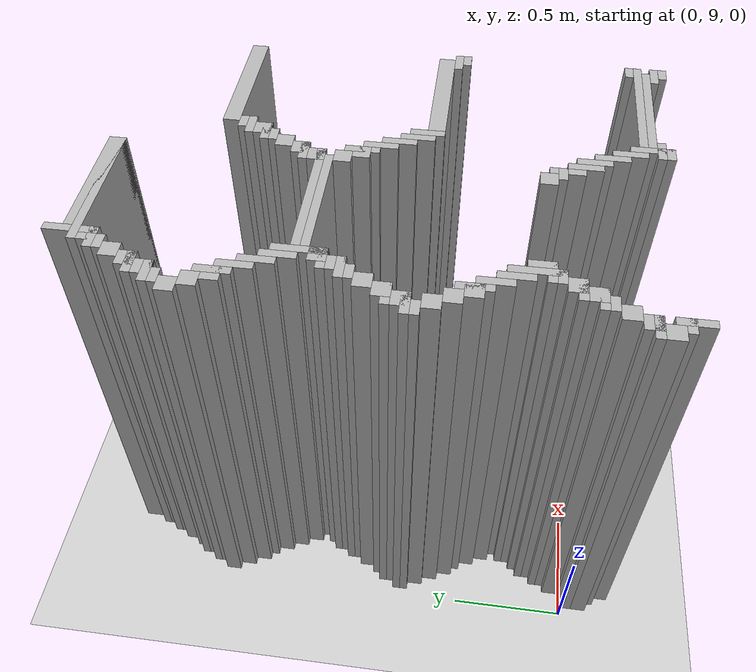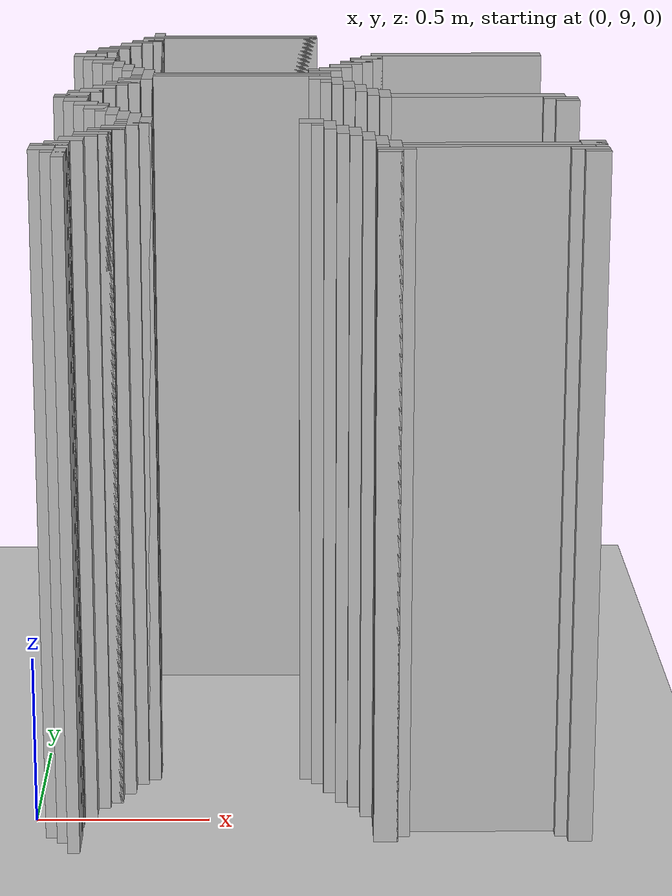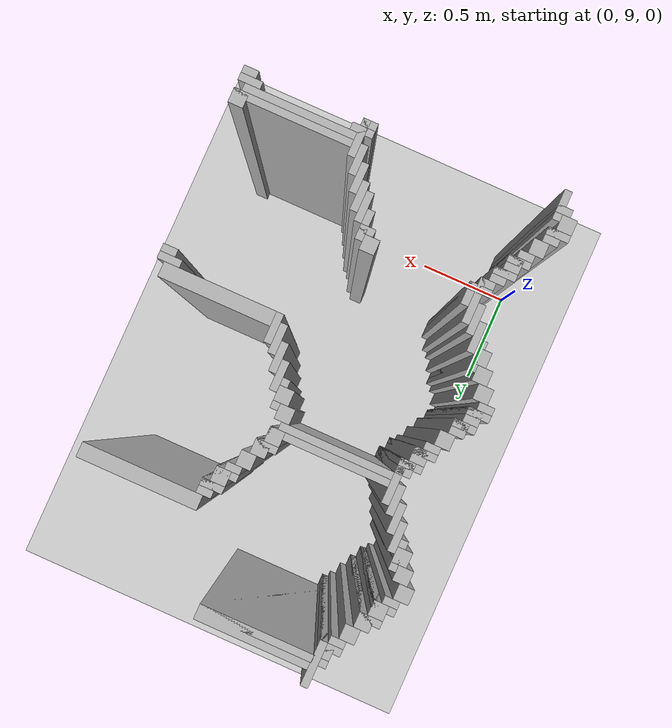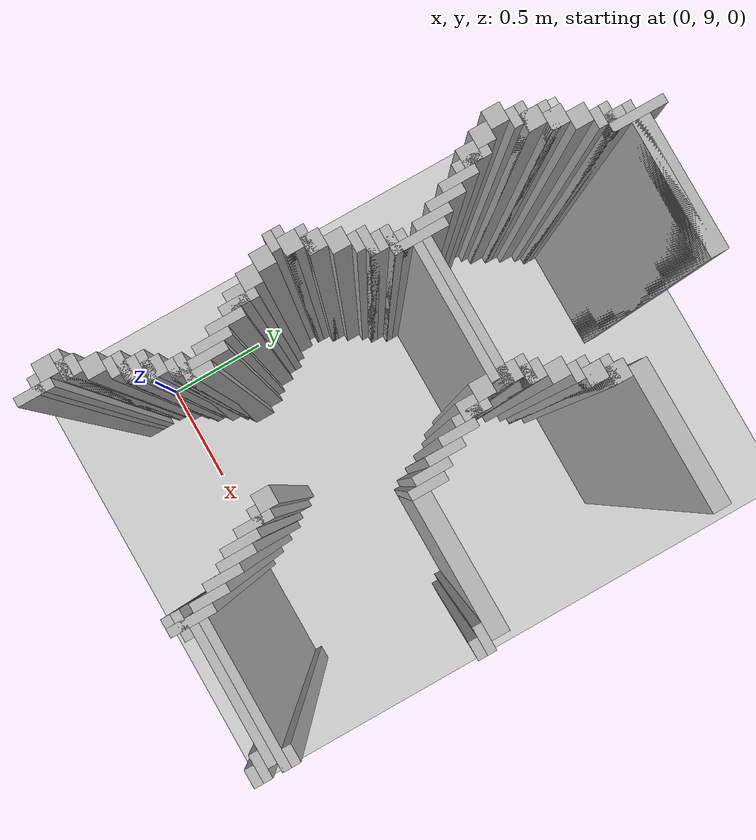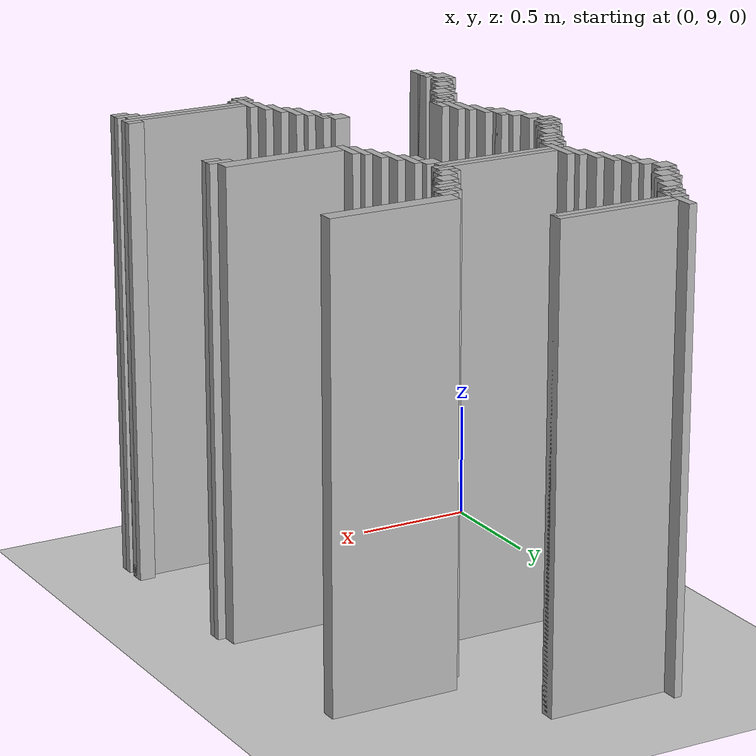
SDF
<sdf version="1.6">
 <world name="slam_world">
  <model name="ground_plane">
   <static>true</static>
   <link name="link">
    <collision name="collision">
     <geometry><plane><normal>0 0 1</normal><size>100 100</size></plane></geometry>
    </collision>
    <visual name="visual">
     <geometry><plane><normal>0 0 1</normal><size>100 100</size></plane></geometry>
     <material>
      <ambient>0.8 0.8 0.8 1</ambient>
      <diffuse>0.8 0.8 0.8 1</diffuse>
      <specular>0.8 0.8 0.8 1</specular>
     </material>
    </visual>
   </link>
  </model>
  <model name="wall_2064">
   <static>true</static>
   <pose>0.29582366589327147 11.032482598607888 1.0 0 0 0</pose>
   <link name="link">
    <collision name="collision">
     <geometry><box><size>0.03480278422273782 0.2088167053364269 2.0</size></box></geometry>
    </collision>
    <visual name="visual">
     <geometry><box><size>0.03480278422273782 0.2088167053364269 2.0</size></box></geometry>
     <material><ambient>0.5 0.5 0.5 1</ambient><diffuse>0.7 0.7 0.7 1</diffuse></material>
    </visual>
   </link>
  </model>
  <model name="wall_2090">
   <static>true</static>
   <pose>0.574245939675174 11.032482598607888 1.0 0 0 0</pose>
   <link name="link">
    <collision name="collision">
     <geometry><box><size>0.5220417633410672 0.06960556844547564 2.0</size></box></geometry>
    </collision>
    <visual name="visual">
     <geometry><box><size>0.5220417633410672 0.06960556844547564 2.0</size></box></geometry>
     <material><ambient>0.5 0.5 0.5 1</ambient><diffuse>0.7 0.7 0.7 1</diffuse></material>
    </visual>
   </link>
  </model>
  <model name="wall_2104">
   <static>true</static>
   <pose>0.5394431554524362 11.01508120649652 1.0 0 0 0</pose>
   <link name="link">
    <collision name="collision">
     <geometry><box><size>0.5916473317865429 0.03480278422273782 2.0</size></box></geometry>
    </collision>
    <visual name="visual">
     <geometry><box><size>0.5916473317865429 0.03480278422273782 2.0</size></box></geometry>
     <material><ambient>0.5 0.5 0.5 1</ambient><diffuse>0.7 0.7 0.7 1</diffuse></material>
    </visual>
   </link>
  </model>
  <model name="wall_2114">
   <static>true</static>
   <pose>0.27842227378190254 10.962877030162412 1.0 0 0 0</pose>
   <link name="link">
    <collision name="collision">
     <geometry><box><size>0.06960556844547564 0.06960556844547564 2.0</size></box></geometry>
    </collision>
    <visual name="visual">
     <geometry><box><size>0.06960556844547564 0.06960556844547564 2.0</size></box></geometry>
     <material><ambient>0.5 0.5 0.5 1</ambient><diffuse>0.7 0.7 0.7 1</diffuse></material>
    </visual>
   </link>
  </model>
  <model name="wall_2127">
   <static>true</static>
   <pose>0.2610208816705336 10.945475638051043 1.0 0 0 0</pose>
   <link name="link">
    <collision name="collision">
     <geometry><box><size>0.10440835266821345 0.03480278422273782 2.0</size></box></geometry>
    </collision>
    <visual name="visual">
     <geometry><box><size>0.10440835266821345 0.03480278422273782 2.0</size></box></geometry>
     <material><ambient>0.5 0.5 0.5 1</ambient><diffuse>0.7 0.7 0.7 1</diffuse></material>
    </visual>
   </link>
  </model>
  <model name="wall_2140">
   <static>true</static>
   <pose>0.24361948955916474 10.910672853828306 1.0 0 0 0</pose>
   <link name="link">
    <collision name="collision">
     <geometry><box><size>0.06960556844547564 0.03480278422273782 2.0</size></box></geometry>
    </collision>
    <visual name="visual">
     <geometry><box><size>0.06960556844547564 0.03480278422273782 2.0</size></box></geometry>
     <material><ambient>0.5 0.5 0.5 1</ambient><diffuse>0.7 0.7 0.7 1</diffuse></material>
    </visual>
   </link>
  </model>
  <model name="wall_2150">
   <static>true</static>
   <pose>0.2088167053364269 10.8584686774942 1.0 0 0 0</pose>
   <link name="link">
    <collision name="collision">
     <geometry><box><size>0.06960556844547564 0.06960556844547564 2.0</size></box></geometry>
    </collision>
    <visual name="visual">
     <geometry><box><size>0.06960556844547564 0.06960556844547564 2.0</size></box></geometry>
     <material><ambient>0.5 0.5 0.5 1</ambient><diffuse>0.7 0.7 0.7 1</diffuse></material>
    </visual>
   </link>
  </model>
  <model name="wall_2163">
   <static>true</static>
   <pose>0.17401392111368907 10.788863109048723 1.0 0 0 0</pose>
   <link name="link">
    <collision name="collision">
     <geometry><box><size>0.06960556844547564 0.06960556844547564 2.0</size></box></geometry>
    </collision>
    <visual name="visual">
     <geometry><box><size>0.06960556844547564 0.06960556844547564 2.0</size></box></geometry>
     <material><ambient>0.5 0.5 0.5 1</ambient><diffuse>0.7 0.7 0.7 1</diffuse></material>
    </visual>
   </link>
  </model>
  <model name="wall_2176">
   <static>true</static>
   <pose>0.15661252900232017 10.771461716937354 1.0 0 0 0</pose>
   <link name="link">
    <collision name="collision">
     <geometry><box><size>0.10440835266821345 0.03480278422273782 2.0</size></box></geometry>
    </collision>
    <visual name="visual">
     <geometry><box><size>0.10440835266821345 0.03480278422273782 2.0</size></box></geometry>
     <material><ambient>0.5 0.5 0.5 1</ambient><diffuse>0.7 0.7 0.7 1</diffuse></material>
    </visual>
   </link>
  </model>
  <model name="wall_2189">
   <static>true</static>
   <pose>0.13921113689095127 10.719257540603248 1.0 0 0 0</pose>
   <link name="link">
    <collision name="collision">
     <geometry><box><size>0.06960556844547564 0.06960556844547564 2.0</size></box></geometry>
    </collision>
    <visual name="visual">
     <geometry><box><size>0.06960556844547564 0.06960556844547564 2.0</size></box></geometry>
     <material><ambient>0.5 0.5 0.5 1</ambient><diffuse>0.7 0.7 0.7 1</diffuse></material>
    </visual>
   </link>
  </model>
  <model name="wall_2196">
   <static>true</static>
   <pose>0.12180974477958237 10.70185614849188 1.0 0 0 0</pose>
   <link name="link">
    <collision name="collision">
     <geometry><box><size>0.10440835266821345 0.03480278422273782 2.0</size></box></geometry>
    </collision>
    <visual name="visual">
     <geometry><box><size>0.10440835266821345 0.03480278422273782 2.0</size></box></geometry>
     <material><ambient>0.5 0.5 0.5 1</ambient><diffuse>0.7 0.7 0.7 1</diffuse></material>
    </visual>
   </link>
  </model>
  <model name="wall_2209">
   <static>true</static>
   <pose>0.10440835266821345 10.66705336426914 1.0 0 0 0</pose>
   <link name="link">
    <collision name="collision">
     <geometry><box><size>0.06960556844547564 0.03480278422273782 2.0</size></box></geometry>
    </collision>
    <visual name="visual">
     <geometry><box><size>0.06960556844547564 0.03480278422273782 2.0</size></box></geometry>
     <material><ambient>0.5 0.5 0.5 1</ambient><diffuse>0.7 0.7 0.7 1</diffuse></material>
    </visual>
   </link>
  </model>
  <model name="wall_2216">
   <static>true</static>
   <pose>0.06960556844547564 10.614849187935034 1.0 0 0 0</pose>
   <link name="link">
    <collision name="collision">
     <geometry><box><size>0.06960556844547564 0.06960556844547564 2.0</size></box></geometry>
    </collision>
    <visual name="visual">
     <geometry><box><size>0.06960556844547564 0.06960556844547564 2.0</size></box></geometry>
     <material><ambient>0.5 0.5 0.5 1</ambient><diffuse>0.7 0.7 0.7 1</diffuse></material>
    </visual>
   </link>
  </model>
  <model name="wall_2217">
   <static>true</static>
   <pose>1.2877030162412992 10.614849187935034 1.0 0 0 0</pose>
   <link name="link">
    <collision name="collision">
     <geometry><box><size>0.5568445475638051 0.06960556844547564 2.0</size></box></geometry>
    </collision>
    <visual name="visual">
     <geometry><box><size>0.5568445475638051 0.06960556844547564 2.0</size></box></geometry>
     <material><ambient>0.5 0.5 0.5 1</ambient><diffuse>0.7 0.7 0.7 1</diffuse></material>
    </visual>
   </link>
  </model>
  <model name="wall_2234">
   <static>true</static>
   <pose>0.10440835266821345 10.54524361948956 1.0 0 0 0</pose>
   <link name="link">
    <collision name="collision">
     <geometry><box><size>0.06960556844547564 0.06960556844547564 2.0</size></box></geometry>
    </collision>
    <visual name="visual">
     <geometry><box><size>0.06960556844547564 0.06960556844547564 2.0</size></box></geometry>
     <material><ambient>0.5 0.5 0.5 1</ambient><diffuse>0.7 0.7 0.7 1</diffuse></material>
    </visual>
   </link>
  </model>
  <model name="wall_2235">
   <static>true</static>
   <pose>1.0092807424593968 10.54524361948956 1.0 0 0 0</pose>
   <link name="link">
    <collision name="collision">
     <geometry><box><size>0.06960556844547564 0.06960556844547564 2.0</size></box></geometry>
    </collision>
    <visual name="visual">
     <geometry><box><size>0.06960556844547564 0.06960556844547564 2.0</size></box></geometry>
     <material><ambient>0.5 0.5 0.5 1</ambient><diffuse>0.7 0.7 0.7 1</diffuse></material>
    </visual>
   </link>
  </model>
  <model name="wall_2251">
   <static>true</static>
   <pose>0.15661252900232017 10.475638051044083 1.0 0 0 0</pose>
   <link name="link">
    <collision name="collision">
     <geometry><box><size>0.03480278422273782 0.13921113689095127 2.0</size></box></geometry>
    </collision>
    <visual name="visual">
     <geometry><box><size>0.03480278422273782 0.13921113689095127 2.0</size></box></geometry>
     <material><ambient>0.5 0.5 0.5 1</ambient><diffuse>0.7 0.7 0.7 1</diffuse></material>
    </visual>
   </link>
  </model>
  <model name="wall_2252">
   <static>true</static>
   <pose>0.9918793503480278 10.52784222737819 1.0 0 0 0</pose>
   <link name="link">
    <collision name="collision">
     <geometry><box><size>0.10440835266821345 0.03480278422273782 2.0</size></box></geometry>
    </collision>
    <visual name="visual">
     <geometry><box><size>0.10440835266821345 0.03480278422273782 2.0</size></box></geometry>
     <material><ambient>0.5 0.5 0.5 1</ambient><diffuse>0.7 0.7 0.7 1</diffuse></material>
    </visual>
   </link>
  </model>
  <model name="wall_2268">
   <static>true</static>
   <pose>0.13921113689095127 10.475638051044083 1.0 0 0 0</pose>
   <link name="link">
    <collision name="collision">
     <geometry><box><size>0.06960556844547564 0.06960556844547564 2.0</size></box></geometry>
    </collision>
    <visual name="visual">
     <geometry><box><size>0.06960556844547564 0.06960556844547564 2.0</size></box></geometry>
     <material><ambient>0.5 0.5 0.5 1</ambient><diffuse>0.7 0.7 0.7 1</diffuse></material>
    </visual>
   </link>
  </model>
  <model name="wall_2269">
   <static>true</static>
   <pose>0.974477958236659 10.475638051044083 1.0 0 0 0</pose>
   <link name="link">
    <collision name="collision">
     <geometry><box><size>0.06960556844547564 0.06960556844547564 2.0</size></box></geometry>
    </collision>
    <visual name="visual">
     <geometry><box><size>0.06960556844547564 0.06960556844547564 2.0</size></box></geometry>
     <material><ambient>0.5 0.5 0.5 1</ambient><diffuse>0.7 0.7 0.7 1</diffuse></material>
    </visual>
   </link>
  </model>
  <model name="wall_2285">
   <static>true</static>
   <pose>0.191415313225058 10.406032482598608 1.0 0 0 0</pose>
   <link name="link">
    <collision name="collision">
     <geometry><box><size>0.03480278422273782 0.13921113689095127 2.0</size></box></geometry>
    </collision>
    <visual name="visual">
     <geometry><box><size>0.03480278422273782 0.13921113689095127 2.0</size></box></geometry>
     <material><ambient>0.5 0.5 0.5 1</ambient><diffuse>0.7 0.7 0.7 1</diffuse></material>
    </visual>
   </link>
  </model>
  <model name="wall_2286">
   <static>true</static>
   <pose>0.95707656612529 10.458236658932714 1.0 0 0 0</pose>
   <link name="link">
    <collision name="collision">
     <geometry><box><size>0.10440835266821345 0.03480278422273782 2.0</size></box></geometry>
    </collision>
    <visual name="visual">
     <geometry><box><size>0.10440835266821345 0.03480278422273782 2.0</size></box></geometry>
     <material><ambient>0.5 0.5 0.5 1</ambient><diffuse>0.7 0.7 0.7 1</diffuse></material>
    </visual>
   </link>
  </model>
  <model name="wall_2302">
   <static>true</static>
   <pose>0.9396751740139211 10.423433874709977 1.0 0 0 0</pose>
   <link name="link">
    <collision name="collision">
     <geometry><box><size>0.06960556844547564 0.03480278422273782 2.0</size></box></geometry>
    </collision>
    <visual name="visual">
     <geometry><box><size>0.06960556844547564 0.03480278422273782 2.0</size></box></geometry>
     <material><ambient>0.5 0.5 0.5 1</ambient><diffuse>0.7 0.7 0.7 1</diffuse></material>
    </visual>
   </link>
  </model>
  <model name="wall_2310">
   <static>true</static>
   <pose>0.2262180974477958 10.336426914153131 1.0 0 0 0</pose>
   <link name="link">
    <collision name="collision">
     <geometry><box><size>0.03480278422273782 0.13921113689095127 2.0</size></box></geometry>
    </collision>
    <visual name="visual">
     <geometry><box><size>0.03480278422273782 0.13921113689095127 2.0</size></box></geometry>
     <material><ambient>0.5 0.5 0.5 1</ambient><diffuse>0.7 0.7 0.7 1</diffuse></material>
    </visual>
   </link>
  </model>
  <model name="wall_2311">
   <static>true</static>
   <pose>0.9048723897911832 10.37122969837587 1.0 0 0 0</pose>
   <link name="link">
    <collision name="collision">
     <geometry><box><size>0.06960556844547564 0.06960556844547564 2.0</size></box></geometry>
    </collision>
    <visual name="visual">
     <geometry><box><size>0.06960556844547564 0.06960556844547564 2.0</size></box></geometry>
     <material><ambient>0.5 0.5 0.5 1</ambient><diffuse>0.7 0.7 0.7 1</diffuse></material>
    </visual>
   </link>
  </model>
  <model name="wall_2327">
   <static>true</static>
   <pose>0.2610208816705336 10.266821345707656 1.0 0 0 0</pose>
   <link name="link">
    <collision name="collision">
     <geometry><box><size>0.03480278422273782 0.13921113689095127 2.0</size></box></geometry>
    </collision>
    <visual name="visual">
     <geometry><box><size>0.03480278422273782 0.13921113689095127 2.0</size></box></geometry>
     <material><ambient>0.5 0.5 0.5 1</ambient><diffuse>0.7 0.7 0.7 1</diffuse></material>
    </visual>
   </link>
  </model>
  <model name="wall_2328">
   <static>true</static>
   <pose>0.8700696055684455 10.301624129930394 1.0 0 0 0</pose>
   <link name="link">
    <collision name="collision">
     <geometry><box><size>0.06960556844547564 0.06960556844547564 2.0</size></box></geometry>
    </collision>
    <visual name="visual">
     <geometry><box><size>0.06960556844547564 0.06960556844547564 2.0</size></box></geometry>
     <material><ambient>0.5 0.5 0.5 1</ambient><diffuse>0.7 0.7 0.7 1</diffuse></material>
    </visual>
   </link>
  </model>
  <model name="wall_2344">
   <static>true</static>
   <pose>0.29582366589327147 10.19721577726218 1.0 0 0 0</pose>
   <link name="link">
    <collision name="collision">
     <geometry><box><size>0.03480278422273782 0.2088167053364269 2.0</size></box></geometry>
    </collision>
    <visual name="visual">
     <geometry><box><size>0.03480278422273782 0.2088167053364269 2.0</size></box></geometry>
     <material><ambient>0.5 0.5 0.5 1</ambient><diffuse>0.7 0.7 0.7 1</diffuse></material>
    </visual>
   </link>
  </model>
  <model name="wall_2345">
   <static>true</static>
   <pose>0.8526682134570766 10.284222737819025 1.0 0 0 0</pose>
   <link name="link">
    <collision name="collision">
     <geometry><box><size>0.10440835266821345 0.03480278422273782 2.0</size></box></geometry>
    </collision>
    <visual name="visual">
     <geometry><box><size>0.10440835266821345 0.03480278422273782 2.0</size></box></geometry>
     <material><ambient>0.5 0.5 0.5 1</ambient><diffuse>0.7 0.7 0.7 1</diffuse></material>
    </visual>
   </link>
  </model>
  <model name="wall_2361">
   <static>true</static>
   <pose>0.8352668213457076 10.232018561484919 1.0 0 0 0</pose>
   <link name="link">
    <collision name="collision">
     <geometry><box><size>0.06960556844547564 0.06960556844547564 2.0</size></box></geometry>
    </collision>
    <visual name="visual">
     <geometry><box><size>0.06960556844547564 0.06960556844547564 2.0</size></box></geometry>
     <material><ambient>0.5 0.5 0.5 1</ambient><diffuse>0.7 0.7 0.7 1</diffuse></material>
    </visual>
   </link>
  </model>
  <model name="wall_2369">
   <static>true</static>
   <pose>0.5916473317865429 10.214617169373549 1.0 0 0 0</pose>
   <link name="link">
    <collision name="collision">
     <geometry><box><size>0.5568445475638051 0.03480278422273782 2.0</size></box></geometry>
    </collision>
    <visual name="visual">
     <geometry><box><size>0.5568445475638051 0.03480278422273782 2.0</size></box></geometry>
     <material><ambient>0.5 0.5 0.5 1</ambient><diffuse>0.7 0.7 0.7 1</diffuse></material>
    </visual>
   </link>
  </model>
  <model name="wall_2382">
   <static>true</static>
   <pose>0.574245939675174 10.179814385150811 1.0 0 0 0</pose>
   <link name="link">
    <collision name="collision">
     <geometry><box><size>0.5220417633410672 0.03480278422273782 2.0</size></box></geometry>
    </collision>
    <visual name="visual">
     <geometry><box><size>0.5220417633410672 0.03480278422273782 2.0</size></box></geometry>
     <material><ambient>0.5 0.5 0.5 1</ambient><diffuse>0.7 0.7 0.7 1</diffuse></material>
    </visual>
   </link>
  </model>
  <model name="wall_2390">
   <static>true</static>
   <pose>0.27842227378190254 10.127610208816705 1.0 0 0 0</pose>
   <link name="link">
    <collision name="collision">
     <geometry><box><size>0.06960556844547564 0.06960556844547564 2.0</size></box></geometry>
    </collision>
    <visual name="visual">
     <geometry><box><size>0.06960556844547564 0.06960556844547564 2.0</size></box></geometry>
     <material><ambient>0.5 0.5 0.5 1</ambient><diffuse>0.7 0.7 0.7 1</diffuse></material>
    </visual>
   </link>
  </model>
  <model name="wall_2391">
   <static>true</static>
   <pose>0.8352668213457076 10.127610208816705 1.0 0 0 0</pose>
   <link name="link">
    <collision name="collision">
     <geometry><box><size>0.06960556844547564 0.06960556844547564 2.0</size></box></geometry>
    </collision>
    <visual name="visual">
     <geometry><box><size>0.06960556844547564 0.06960556844547564 2.0</size></box></geometry>
     <material><ambient>0.5 0.5 0.5 1</ambient><diffuse>0.7 0.7 0.7 1</diffuse></material>
    </visual>
   </link>
  </model>
  <model name="wall_2406">
   <static>true</static>
   <pose>0.2610208816705336 10.110208816705336 1.0 0 0 0</pose>
   <link name="link">
    <collision name="collision">
     <geometry><box><size>0.10440835266821345 0.03480278422273782 2.0</size></box></geometry>
    </collision>
    <visual name="visual">
     <geometry><box><size>0.10440835266821345 0.03480278422273782 2.0</size></box></geometry>
     <material><ambient>0.5 0.5 0.5 1</ambient><diffuse>0.7 0.7 0.7 1</diffuse></material>
    </visual>
   </link>
  </model>
  <model name="wall_2407">
   <static>true</static>
   <pose>0.8874709976798143 10.058004640371228 1.0 0 0 0</pose>
   <link name="link">
    <collision name="collision">
     <geometry><box><size>0.03480278422273782 0.13921113689095127 2.0</size></box></geometry>
    </collision>
    <visual name="visual">
     <geometry><box><size>0.03480278422273782 0.13921113689095127 2.0</size></box></geometry>
     <material><ambient>0.5 0.5 0.5 1</ambient><diffuse>0.7 0.7 0.7 1</diffuse></material>
    </visual>
   </link>
  </model>
  <model name="wall_2422">
   <static>true</static>
   <pose>0.24361948955916474 10.058004640371228 1.0 0 0 0</pose>
   <link name="link">
    <collision name="collision">
     <geometry><box><size>0.06960556844547564 0.06960556844547564 2.0</size></box></geometry>
    </collision>
    <visual name="visual">
     <geometry><box><size>0.06960556844547564 0.06960556844547564 2.0</size></box></geometry>
     <material><ambient>0.5 0.5 0.5 1</ambient><diffuse>0.7 0.7 0.7 1</diffuse></material>
    </visual>
   </link>
  </model>
  <model name="wall_2423">
   <static>true</static>
   <pose>0.8700696055684455 10.058004640371228 1.0 0 0 0</pose>
   <link name="link">
    <collision name="collision">
     <geometry><box><size>0.06960556844547564 0.06960556844547564 2.0</size></box></geometry>
    </collision>
    <visual name="visual">
     <geometry><box><size>0.06960556844547564 0.06960556844547564 2.0</size></box></geometry>
     <material><ambient>0.5 0.5 0.5 1</ambient><diffuse>0.7 0.7 0.7 1</diffuse></material>
    </visual>
   </link>
  </model>
  <model name="wall_2438">
   <static>true</static>
   <pose>0.2262180974477958 10.04060324825986 1.0 0 0 0</pose>
   <link name="link">
    <collision name="collision">
     <geometry><box><size>0.10440835266821345 0.03480278422273782 2.0</size></box></geometry>
    </collision>
    <visual name="visual">
     <geometry><box><size>0.10440835266821345 0.03480278422273782 2.0</size></box></geometry>
     <material><ambient>0.5 0.5 0.5 1</ambient><diffuse>0.7 0.7 0.7 1</diffuse></material>
    </visual>
   </link>
  </model>
  <model name="wall_2439">
   <static>true</static>
   <pose>0.9222737819025522 9.988399071925754 1.0 0 0 0</pose>
   <link name="link">
    <collision name="collision">
     <geometry><box><size>0.03480278422273782 0.13921113689095127 2.0</size></box></geometry>
    </collision>
    <visual name="visual">
     <geometry><box><size>0.03480278422273782 0.13921113689095127 2.0</size></box></geometry>
     <material><ambient>0.5 0.5 0.5 1</ambient><diffuse>0.7 0.7 0.7 1</diffuse></material>
    </visual>
   </link>
  </model>
  <model name="wall_2454">
   <static>true</static>
   <pose>0.2088167053364269 10.005800464037122 1.0 0 0 0</pose>
   <link name="link">
    <collision name="collision">
     <geometry><box><size>0.06960556844547564 0.03480278422273782 2.0</size></box></geometry>
    </collision>
    <visual name="visual">
     <geometry><box><size>0.06960556844547564 0.03480278422273782 2.0</size></box></geometry>
     <material><ambient>0.5 0.5 0.5 1</ambient><diffuse>0.7 0.7 0.7 1</diffuse></material>
    </visual>
   </link>
  </model>
  <model name="wall_2463">
   <static>true</static>
   <pose>0.17401392111368907 9.953596287703016 1.0 0 0 0</pose>
   <link name="link">
    <collision name="collision">
     <geometry><box><size>0.06960556844547564 0.06960556844547564 2.0</size></box></geometry>
    </collision>
    <visual name="visual">
     <geometry><box><size>0.06960556844547564 0.06960556844547564 2.0</size></box></geometry>
     <material><ambient>0.5 0.5 0.5 1</ambient><diffuse>0.7 0.7 0.7 1</diffuse></material>
    </visual>
   </link>
  </model>
  <model name="wall_2464">
   <static>true</static>
   <pose>0.95707656612529 9.918793503480279 1.0 0 0 0</pose>
   <link name="link">
    <collision name="collision">
     <geometry><box><size>0.03480278422273782 0.13921113689095127 2.0</size></box></geometry>
    </collision>
    <visual name="visual">
     <geometry><box><size>0.03480278422273782 0.13921113689095127 2.0</size></box></geometry>
     <material><ambient>0.5 0.5 0.5 1</ambient><diffuse>0.7 0.7 0.7 1</diffuse></material>
    </visual>
   </link>
  </model>
  <model name="wall_2479">
   <static>true</static>
   <pose>0.13921113689095127 9.88399071925754 1.0 0 0 0</pose>
   <link name="link">
    <collision name="collision">
     <geometry><box><size>0.06960556844547564 0.06960556844547564 2.0</size></box></geometry>
    </collision>
    <visual name="visual">
     <geometry><box><size>0.06960556844547564 0.06960556844547564 2.0</size></box></geometry>
     <material><ambient>0.5 0.5 0.5 1</ambient><diffuse>0.7 0.7 0.7 1</diffuse></material>
    </visual>
   </link>
  </model>
  <model name="wall_2480">
   <static>true</static>
   <pose>0.9918793503480278 9.849187935034802 1.0 0 0 0</pose>
   <link name="link">
    <collision name="collision">
     <geometry><box><size>0.03480278422273782 0.13921113689095127 2.0</size></box></geometry>
    </collision>
    <visual name="visual">
     <geometry><box><size>0.03480278422273782 0.13921113689095127 2.0</size></box></geometry>
     <material><ambient>0.5 0.5 0.5 1</ambient><diffuse>0.7 0.7 0.7 1</diffuse></material>
    </visual>
   </link>
  </model>
  <model name="wall_2495">
   <static>true</static>
   <pose>0.12180974477958237 9.86658932714617 1.0 0 0 0</pose>
   <link name="link">
    <collision name="collision">
     <geometry><box><size>0.10440835266821345 0.03480278422273782 2.0</size></box></geometry>
    </collision>
    <visual name="visual">
     <geometry><box><size>0.10440835266821345 0.03480278422273782 2.0</size></box></geometry>
     <material><ambient>0.5 0.5 0.5 1</ambient><diffuse>0.7 0.7 0.7 1</diffuse></material>
    </visual>
   </link>
  </model>
  <model name="wall_2496">
   <static>true</static>
   <pose>1.0266821345707655 9.814385150812065 1.0 0 0 0</pose>
   <link name="link">
    <collision name="collision">
     <geometry><box><size>0.03480278422273782 0.13921113689095127 2.0</size></box></geometry>
    </collision>
    <visual name="visual">
     <geometry><box><size>0.03480278422273782 0.13921113689095127 2.0</size></box></geometry>
     <material><ambient>0.5 0.5 0.5 1</ambient><diffuse>0.7 0.7 0.7 1</diffuse></material>
    </visual>
   </link>
  </model>
  <model name="wall_2511">
   <static>true</static>
   <pose>0.10440835266821345 9.814385150812065 1.0 0 0 0</pose>
   <link name="link">
    <collision name="collision">
     <geometry><box><size>0.06960556844547564 0.06960556844547564 2.0</size></box></geometry>
    </collision>
    <visual name="visual">
     <geometry><box><size>0.06960556844547564 0.06960556844547564 2.0</size></box></geometry>
     <material><ambient>0.5 0.5 0.5 1</ambient><diffuse>0.7 0.7 0.7 1</diffuse></material>
    </visual>
   </link>
  </model>
  <model name="wall_2520">
   <static>true</static>
   <pose>0.08700696055684454 9.796983758700696 1.0 0 0 0</pose>
   <link name="link">
    <collision name="collision">
     <geometry><box><size>0.10440835266821345 0.03480278422273782 2.0</size></box></geometry>
    </collision>
    <visual name="visual">
     <geometry><box><size>0.10440835266821345 0.03480278422273782 2.0</size></box></geometry>
     <material><ambient>0.5 0.5 0.5 1</ambient><diffuse>0.7 0.7 0.7 1</diffuse></material>
    </visual>
   </link>
  </model>
  <model name="wall_2521">
   <static>true</static>
   <pose>1.3051044083526682 9.779582366589327 1.0 0 0 0</pose>
   <link name="link">
    <collision name="collision">
     <geometry><box><size>0.5220417633410672 0.06960556844547564 2.0</size></box></geometry>
    </collision>
    <visual name="visual">
     <geometry><box><size>0.5220417633410672 0.06960556844547564 2.0</size></box></geometry>
     <material><ambient>0.5 0.5 0.5 1</ambient><diffuse>0.7 0.7 0.7 1</diffuse></material>
    </visual>
   </link>
  </model>
  <model name="wall_2534">
   <static>true</static>
   <pose>0.06960556844547564 9.762180974477959 1.0 0 0 0</pose>
   <link name="link">
    <collision name="collision">
     <geometry><box><size>0.06960556844547564 0.03480278422273782 2.0</size></box></geometry>
    </collision>
    <visual name="visual">
     <geometry><box><size>0.06960556844547564 0.03480278422273782 2.0</size></box></geometry>
     <material><ambient>0.5 0.5 0.5 1</ambient><diffuse>0.7 0.7 0.7 1</diffuse></material>
    </visual>
   </link>
  </model>
  <model name="wall_2543">
   <static>true</static>
   <pose>0.10440835266821345 9.70997679814385 1.0 0 0 0</pose>
   <link name="link">
    <collision name="collision">
     <geometry><box><size>0.06960556844547564 0.06960556844547564 2.0</size></box></geometry>
    </collision>
    <visual name="visual">
     <geometry><box><size>0.06960556844547564 0.06960556844547564 2.0</size></box></geometry>
     <material><ambient>0.5 0.5 0.5 1</ambient><diffuse>0.7 0.7 0.7 1</diffuse></material>
    </visual>
   </link>
  </model>
  <model name="wall_2544">
   <static>true</static>
   <pose>1.548723897911833 9.72737819025522 1.0 0 0 0</pose>
   <link name="link">
    <collision name="collision">
     <geometry><box><size>0.10440835266821345 0.03480278422273782 2.0</size></box></geometry>
    </collision>
    <visual name="visual">
     <geometry><box><size>0.10440835266821345 0.03480278422273782 2.0</size></box></geometry>
     <material><ambient>0.5 0.5 0.5 1</ambient><diffuse>0.7 0.7 0.7 1</diffuse></material>
    </visual>
   </link>
  </model>
  <model name="wall_2554">
   <static>true</static>
   <pose>1.5661252900232019 9.692575406032482 1.0 0 0 0</pose>
   <link name="link">
    <collision name="collision">
     <geometry><box><size>0.06960556844547564 0.03480278422273782 2.0</size></box></geometry>
    </collision>
    <visual name="visual">
     <geometry><box><size>0.06960556844547564 0.03480278422273782 2.0</size></box></geometry>
     <material><ambient>0.5 0.5 0.5 1</ambient><diffuse>0.7 0.7 0.7 1</diffuse></material>
    </visual>
   </link>
  </model>
  <model name="wall_2560">
   <static>true</static>
   <pose>0.13921113689095127 9.640371229698376 1.0 0 0 0</pose>
   <link name="link">
    <collision name="collision">
     <geometry><box><size>0.06960556844547564 0.06960556844547564 2.0</size></box></geometry>
    </collision>
    <visual name="visual">
     <geometry><box><size>0.06960556844547564 0.06960556844547564 2.0</size></box></geometry>
     <material><ambient>0.5 0.5 0.5 1</ambient><diffuse>0.7 0.7 0.7 1</diffuse></material>
    </visual>
   </link>
  </model>
  <model name="wall_2571">
   <static>true</static>
   <pose>0.191415313225058 9.5707656612529 1.0 0 0 0</pose>
   <link name="link">
    <collision name="collision">
     <geometry><box><size>0.03480278422273782 0.13921113689095127 2.0</size></box></geometry>
    </collision>
    <visual name="visual">
     <geometry><box><size>0.03480278422273782 0.13921113689095127 2.0</size></box></geometry>
     <material><ambient>0.5 0.5 0.5 1</ambient><diffuse>0.7 0.7 0.7 1</diffuse></material>
    </visual>
   </link>
  </model>
  <model name="wall_2582">
   <static>true</static>
   <pose>0.17401392111368907 9.5707656612529 1.0 0 0 0</pose>
   <link name="link">
    <collision name="collision">
     <geometry><box><size>0.06960556844547564 0.06960556844547564 2.0</size></box></geometry>
    </collision>
    <visual name="visual">
     <geometry><box><size>0.06960556844547564 0.06960556844547564 2.0</size></box></geometry>
     <material><ambient>0.5 0.5 0.5 1</ambient><diffuse>0.7 0.7 0.7 1</diffuse></material>
    </visual>
   </link>
  </model>
  <model name="wall_2593">
   <static>true</static>
   <pose>0.2262180974477958 9.501160092807424 1.0 0 0 0</pose>
   <link name="link">
    <collision name="collision">
     <geometry><box><size>0.03480278422273782 0.13921113689095127 2.0</size></box></geometry>
    </collision>
    <visual name="visual">
     <geometry><box><size>0.03480278422273782 0.13921113689095127 2.0</size></box></geometry>
     <material><ambient>0.5 0.5 0.5 1</ambient><diffuse>0.7 0.7 0.7 1</diffuse></material>
    </visual>
   </link>
  </model>
  <model name="wall_2607">
   <static>true</static>
   <pose>0.2610208816705336 9.431554524361948 1.0 0 0 0</pose>
   <link name="link">
    <collision name="collision">
     <geometry><box><size>0.03480278422273782 0.13921113689095127 2.0</size></box></geometry>
    </collision>
    <visual name="visual">
     <geometry><box><size>0.03480278422273782 0.13921113689095127 2.0</size></box></geometry>
     <material><ambient>0.5 0.5 0.5 1</ambient><diffuse>0.7 0.7 0.7 1</diffuse></material>
    </visual>
   </link>
  </model>
  <model name="wall_2618">
   <static>true</static>
   <pose>0.29582366589327147 9.361948955916473 1.0 0 0 0</pose>
   <link name="link">
    <collision name="collision">
     <geometry><box><size>0.03480278422273782 0.2088167053364269 2.0</size></box></geometry>
    </collision>
    <visual name="visual">
     <geometry><box><size>0.03480278422273782 0.2088167053364269 2.0</size></box></geometry>
     <material><ambient>0.5 0.5 0.5 1</ambient><diffuse>0.7 0.7 0.7 1</diffuse></material>
    </visual>
   </link>
  </model>
  <model name="wall_2632">
   <static>true</static>
   <pose>0.3306264501160093 9.344547563805104 1.0 0 0 0</pose>
   <link name="link">
    <collision name="collision">
     <geometry><box><size>0.03480278422273782 0.10440835266821345 2.0</size></box></geometry>
    </collision>
    <visual name="visual">
     <geometry><box><size>0.03480278422273782 0.10440835266821345 2.0</size></box></geometry>
     <material><ambient>0.5 0.5 0.5 1</ambient><diffuse>0.7 0.7 0.7 1</diffuse></material>
    </visual>
   </link>
  </model>
  <model name="wall_2645">
   <static>true</static>
   <pose>0.8004640371229698 9.327146171693736 1.0 0 0 0</pose>
   <link name="link">
    <collision name="collision">
     <geometry><box><size>0.06960556844547564 0.06960556844547564 2.0</size></box></geometry>
    </collision>
    <visual name="visual">
     <geometry><box><size>0.06960556844547564 0.06960556844547564 2.0</size></box></geometry>
     <material><ambient>0.5 0.5 0.5 1</ambient><diffuse>0.7 0.7 0.7 1</diffuse></material>
    </visual>
   </link>
  </model>
  <model name="wall_2655">
   <static>true</static>
   <pose>0.29582366589327147 9.309744779582367 1.0 0 0 0</pose>
   <link name="link">
    <collision name="collision">
     <geometry><box><size>0.10440835266821345 0.03480278422273782 2.0</size></box></geometry>
    </collision>
    <visual name="visual">
     <geometry><box><size>0.10440835266821345 0.03480278422273782 2.0</size></box></geometry>
     <material><ambient>0.5 0.5 0.5 1</ambient><diffuse>0.7 0.7 0.7 1</diffuse></material>
    </visual>
   </link>
  </model>
  <model name="wall_2656">
   <static>true</static>
   <pose>0.8526682134570766 9.257540603248259 1.0 0 0 0</pose>
   <link name="link">
    <collision name="collision">
     <geometry><box><size>0.03480278422273782 0.13921113689095127 2.0</size></box></geometry>
    </collision>
    <visual name="visual">
     <geometry><box><size>0.03480278422273782 0.13921113689095127 2.0</size></box></geometry>
     <material><ambient>0.5 0.5 0.5 1</ambient><diffuse>0.7 0.7 0.7 1</diffuse></material>
    </visual>
   </link>
  </model>
  <model name="wall_2673">
   <static>true</static>
   <pose>0.27842227378190254 9.274941995359628 1.0 0 0 0</pose>
   <link name="link">
    <collision name="collision">
     <geometry><box><size>0.06960556844547564 0.03480278422273782 2.0</size></box></geometry>
    </collision>
    <visual name="visual">
     <geometry><box><size>0.06960556844547564 0.03480278422273782 2.0</size></box></geometry>
     <material><ambient>0.5 0.5 0.5 1</ambient><diffuse>0.7 0.7 0.7 1</diffuse></material>
    </visual>
   </link>
  </model>
  <model name="wall_2674">
   <static>true</static>
   <pose>0.8352668213457076 9.274941995359628 1.0 0 0 0</pose>
   <link name="link">
    <collision name="collision">
     <geometry><box><size>0.06960556844547564 0.03480278422273782 2.0</size></box></geometry>
    </collision>
    <visual name="visual">
     <geometry><box><size>0.06960556844547564 0.03480278422273782 2.0</size></box></geometry>
     <material><ambient>0.5 0.5 0.5 1</ambient><diffuse>0.7 0.7 0.7 1</diffuse></material>
    </visual>
   </link>
  </model>
  <model name="wall_2686">
   <static>true</static>
   <pose>0.24361948955916474 9.222737819025522 1.0 0 0 0</pose>
   <link name="link">
    <collision name="collision">
     <geometry><box><size>0.06960556844547564 0.06960556844547564 2.0</size></box></geometry>
    </collision>
    <visual name="visual">
     <geometry><box><size>0.06960556844547564 0.06960556844547564 2.0</size></box></geometry>
     <material><ambient>0.5 0.5 0.5 1</ambient><diffuse>0.7 0.7 0.7 1</diffuse></material>
    </visual>
   </link>
  </model>
  <model name="wall_2687">
   <static>true</static>
   <pose>0.8874709976798143 9.187935034802784 1.0 0 0 0</pose>
   <link name="link">
    <collision name="collision">
     <geometry><box><size>0.03480278422273782 0.13921113689095127 2.0</size></box></geometry>
    </collision>
    <visual name="visual">
     <geometry><box><size>0.03480278422273782 0.13921113689095127 2.0</size></box></geometry>
     <material><ambient>0.5 0.5 0.5 1</ambient><diffuse>0.7 0.7 0.7 1</diffuse></material>
    </visual>
   </link>
  </model>
  <model name="wall_2704">
   <static>true</static>
   <pose>0.2262180974477958 9.205336426914153 1.0 0 0 0</pose>
   <link name="link">
    <collision name="collision">
     <geometry><box><size>0.10440835266821345 0.03480278422273782 2.0</size></box></geometry>
    </collision>
    <visual name="visual">
     <geometry><box><size>0.10440835266821345 0.03480278422273782 2.0</size></box></geometry>
     <material><ambient>0.5 0.5 0.5 1</ambient><diffuse>0.7 0.7 0.7 1</diffuse></material>
    </visual>
   </link>
  </model>
  <model name="wall_2705">
   <static>true</static>
   <pose>0.9222737819025522 9.153132250580047 1.0 0 0 0</pose>
   <link name="link">
    <collision name="collision">
     <geometry><box><size>0.03480278422273782 0.13921113689095127 2.0</size></box></geometry>
    </collision>
    <visual name="visual">
     <geometry><box><size>0.03480278422273782 0.13921113689095127 2.0</size></box></geometry>
     <material><ambient>0.5 0.5 0.5 1</ambient><diffuse>0.7 0.7 0.7 1</diffuse></material>
    </visual>
   </link>
  </model>
  <model name="wall_2722">
   <static>true</static>
   <pose>0.2088167053364269 9.153132250580047 1.0 0 0 0</pose>
   <link name="link">
    <collision name="collision">
     <geometry><box><size>0.06960556844547564 0.06960556844547564 2.0</size></box></geometry>
    </collision>
    <visual name="visual">
     <geometry><box><size>0.06960556844547564 0.06960556844547564 2.0</size></box></geometry>
     <material><ambient>0.5 0.5 0.5 1</ambient><diffuse>0.7 0.7 0.7 1</diffuse></material>
    </visual>
   </link>
  </model>
  <model name="wall_2734">
   <static>true</static>
   <pose>0.191415313225058 9.135730858468676 1.0 0 0 0</pose>
   <link name="link">
    <collision name="collision">
     <geometry><box><size>0.10440835266821345 0.03480278422273782 2.0</size></box></geometry>
    </collision>
    <visual name="visual">
     <geometry><box><size>0.10440835266821345 0.03480278422273782 2.0</size></box></geometry>
     <material><ambient>0.5 0.5 0.5 1</ambient><diffuse>0.7 0.7 0.7 1</diffuse></material>
    </visual>
   </link>
  </model>
  <model name="wall_2735">
   <static>true</static>
   <pose>0.95707656612529 9.08352668213457 1.0 0 0 0</pose>
   <link name="link">
    <collision name="collision">
     <geometry><box><size>0.03480278422273782 0.13921113689095127 2.0</size></box></geometry>
    </collision>
    <visual name="visual">
     <geometry><box><size>0.03480278422273782 0.13921113689095127 2.0</size></box></geometry>
     <material><ambient>0.5 0.5 0.5 1</ambient><diffuse>0.7 0.7 0.7 1</diffuse></material>
    </visual>
   </link>
  </model>
  <model name="wall_2752">
   <static>true</static>
   <pose>0.17401392111368907 9.100928074245939 1.0 0 0 0</pose>
   <link name="link">
    <collision name="collision">
     <geometry><box><size>0.06960556844547564 0.03480278422273782 2.0</size></box></geometry>
    </collision>
    <visual name="visual">
     <geometry><box><size>0.06960556844547564 0.03480278422273782 2.0</size></box></geometry>
     <material><ambient>0.5 0.5 0.5 1</ambient><diffuse>0.7 0.7 0.7 1</diffuse></material>
    </visual>
   </link>
  </model>
  <model name="wall_2763">
   <static>true</static>
   <pose>0.13921113689095127 9.048723897911833 1.0 0 0 0</pose>
   <link name="link">
    <collision name="collision">
     <geometry><box><size>0.06960556844547564 0.06960556844547564 2.0</size></box></geometry>
    </collision>
    <visual name="visual">
     <geometry><box><size>0.06960556844547564 0.06960556844547564 2.0</size></box></geometry>
     <material><ambient>0.5 0.5 0.5 1</ambient><diffuse>0.7 0.7 0.7 1</diffuse></material>
    </visual>
   </link>
  </model>
  <model name="wall_2764">
   <static>true</static>
   <pose>0.9918793503480278 9.013921113689095 1.0 0 0 0</pose>
   <link name="link">
    <collision name="collision">
     <geometry><box><size>0.03480278422273782 0.13921113689095127 2.0</size></box></geometry>
    </collision>
    <visual name="visual">
     <geometry><box><size>0.03480278422273782 0.13921113689095127 2.0</size></box></geometry>
     <material><ambient>0.5 0.5 0.5 1</ambient><diffuse>0.7 0.7 0.7 1</diffuse></material>
    </visual>
   </link>
  </model>
  <model name="wall_2781">
   <static>true</static>
   <pose>0.10440835266821345 8.979118329466356 1.0 0 0 0</pose>
   <link name="link">
    <collision name="collision">
     <geometry><box><size>0.06960556844547564 0.06960556844547564 2.0</size></box></geometry>
    </collision>
    <visual name="visual">
     <geometry><box><size>0.06960556844547564 0.06960556844547564 2.0</size></box></geometry>
     <material><ambient>0.5 0.5 0.5 1</ambient><diffuse>0.7 0.7 0.7 1</diffuse></material>
    </visual>
   </link>
  </model>
  <model name="wall_2782">
   <static>true</static>
   <pose>1.0266821345707655 8.92691415313225 1.0 0 0 0</pose>
   <link name="link">
    <collision name="collision">
     <geometry><box><size>0.03480278422273782 0.17401392111368907 2.0</size></box></geometry>
    </collision>
    <visual name="visual">
     <geometry><box><size>0.03480278422273782 0.17401392111368907 2.0</size></box></geometry>
     <material><ambient>0.5 0.5 0.5 1</ambient><diffuse>0.7 0.7 0.7 1</diffuse></material>
    </visual>
   </link>
  </model>
  <model name="wall_2783">
   <static>true</static>
   <pose>1.5661252900232019 8.979118329466356 1.0 0 0 0</pose>
   <link name="link">
    <collision name="collision">
     <geometry><box><size>0.06960556844547564 0.06960556844547564 2.0</size></box></geometry>
    </collision>
    <visual name="visual">
     <geometry><box><size>0.06960556844547564 0.06960556844547564 2.0</size></box></geometry>
     <material><ambient>0.5 0.5 0.5 1</ambient><diffuse>0.7 0.7 0.7 1</diffuse></material>
    </visual>
   </link>
  </model>
  <model name="wall_2799">
   <static>true</static>
   <pose>0.08700696055684454 8.961716937354987 1.0 0 0 0</pose>
   <link name="link">
    <collision name="collision">
     <geometry><box><size>0.10440835266821345 0.03480278422273782 2.0</size></box></geometry>
    </collision>
    <visual name="visual">
     <geometry><box><size>0.10440835266821345 0.03480278422273782 2.0</size></box></geometry>
     <material><ambient>0.5 0.5 0.5 1</ambient><diffuse>0.7 0.7 0.7 1</diffuse></material>
    </visual>
   </link>
  </model>
  <model name="wall_2800">
   <static>true</static>
   <pose>1.322505800464037 8.961716937354987 1.0 0 0 0</pose>
   <link name="link">
    <collision name="collision">
     <geometry><box><size>0.5568445475638051 0.03480278422273782 2.0</size></box></geometry>
    </collision>
    <visual name="visual">
     <geometry><box><size>0.5568445475638051 0.03480278422273782 2.0</size></box></geometry>
     <material><ambient>0.5 0.5 0.5 1</ambient><diffuse>0.7 0.7 0.7 1</diffuse></material>
    </visual>
   </link>
  </model>
  <model name="wall_2813">
   <static>true</static>
   <pose>0.06960556844547564 8.909512761020881 1.0 0 0 0</pose>
   <link name="link">
    <collision name="collision">
     <geometry><box><size>0.06960556844547564 0.06960556844547564 2.0</size></box></geometry>
    </collision>
    <visual name="visual">
     <geometry><box><size>0.06960556844547564 0.06960556844547564 2.0</size></box></geometry>
     <material><ambient>0.5 0.5 0.5 1</ambient><diffuse>0.7 0.7 0.7 1</diffuse></material>
    </visual>
   </link>
  </model>
  <model name="wall_2814">
   <static>true</static>
   <pose>1.3051044083526682 8.92691415313225 1.0 0 0 0</pose>
   <link name="link">
    <collision name="collision">
     <geometry><box><size>0.5220417633410672 0.03480278422273782 2.0</size></box></geometry>
    </collision>
    <visual name="visual">
     <geometry><box><size>0.5220417633410672 0.03480278422273782 2.0</size></box></geometry>
     <material><ambient>0.5 0.5 0.5 1</ambient><diffuse>0.7 0.7 0.7 1</diffuse></material>
    </visual>
   </link>
  </model>
  <model name="wall_2824">
   <static>true</static>
   <pose>0.12180974477958237 8.839907192575406 1.0 0 0 0</pose>
   <link name="link">
    <collision name="collision">
     <geometry><box><size>0.03480278422273782 0.13921113689095127 2.0</size></box></geometry>
    </collision>
    <visual name="visual">
     <geometry><box><size>0.03480278422273782 0.13921113689095127 2.0</size></box></geometry>
     <material><ambient>0.5 0.5 0.5 1</ambient><diffuse>0.7 0.7 0.7 1</diffuse></material>
    </visual>
   </link>
  </model>
  <model name="wall_2825">
   <static>true</static>
   <pose>1.0266821345707655 8.892111368909513 1.0 0 0 0</pose>
   <link name="link">
    <collision name="collision">
     <geometry><box><size>0.10440835266821345 0.03480278422273782 2.0</size></box></geometry>
    </collision>
    <visual name="visual">
     <geometry><box><size>0.10440835266821345 0.03480278422273782 2.0</size></box></geometry>
     <material><ambient>0.5 0.5 0.5 1</ambient><diffuse>0.7 0.7 0.7 1</diffuse></material>
    </visual>
   </link>
  </model>
  <model name="wall_2826">
   <static>true</static>
   <pose>1.548723897911833 8.892111368909513 1.0 0 0 0</pose>
   <link name="link">
    <collision name="collision">
     <geometry><box><size>0.10440835266821345 0.03480278422273782 2.0</size></box></geometry>
    </collision>
    <visual name="visual">
     <geometry><box><size>0.10440835266821345 0.03480278422273782 2.0</size></box></geometry>
     <material><ambient>0.5 0.5 0.5 1</ambient><diffuse>0.7 0.7 0.7 1</diffuse></material>
    </visual>
   </link>
  </model>
  <model name="wall_2843">
   <static>true</static>
   <pose>0.10440835266821345 8.857308584686775 1.0 0 0 0</pose>
   <link name="link">
    <collision name="collision">
     <geometry><box><size>0.06960556844547564 0.03480278422273782 2.0</size></box></geometry>
    </collision>
    <visual name="visual">
     <geometry><box><size>0.06960556844547564 0.03480278422273782 2.0</size></box></geometry>
     <material><ambient>0.5 0.5 0.5 1</ambient><diffuse>0.7 0.7 0.7 1</diffuse></material>
    </visual>
   </link>
  </model>
  <model name="wall_2844">
   <static>true</static>
   <pose>1.0092807424593968 8.857308584686775 1.0 0 0 0</pose>
   <link name="link">
    <collision name="collision">
     <geometry><box><size>0.06960556844547564 0.03480278422273782 2.0</size></box></geometry>
    </collision>
    <visual name="visual">
     <geometry><box><size>0.06960556844547564 0.03480278422273782 2.0</size></box></geometry>
     <material><ambient>0.5 0.5 0.5 1</ambient><diffuse>0.7 0.7 0.7 1</diffuse></material>
    </visual>
   </link>
  </model>
  <model name="wall_2845">
   <static>true</static>
   <pose>1.5661252900232019 8.857308584686775 1.0 0 0 0</pose>
   <link name="link">
    <collision name="collision">
     <geometry><box><size>0.06960556844547564 0.03480278422273782 2.0</size></box></geometry>
    </collision>
    <visual name="visual">
     <geometry><box><size>0.06960556844547564 0.03480278422273782 2.0</size></box></geometry>
     <material><ambient>0.5 0.5 0.5 1</ambient><diffuse>0.7 0.7 0.7 1</diffuse></material>
    </visual>
   </link>
  </model>
 </world>
</sdf>
